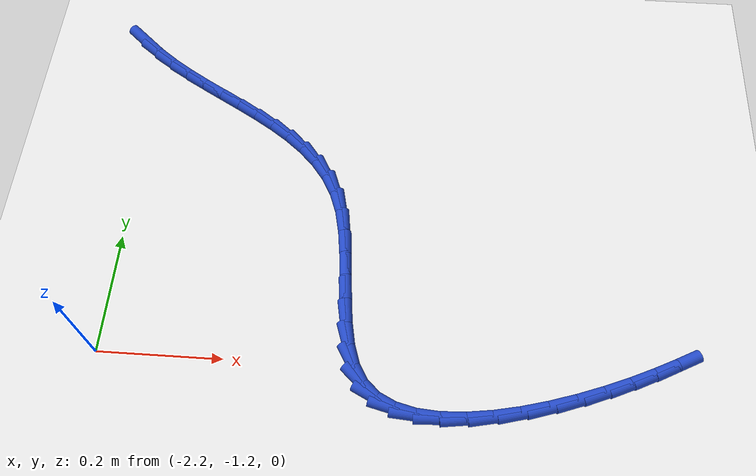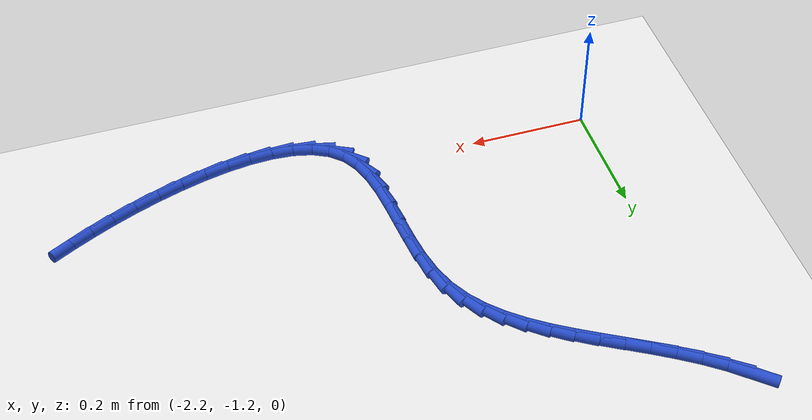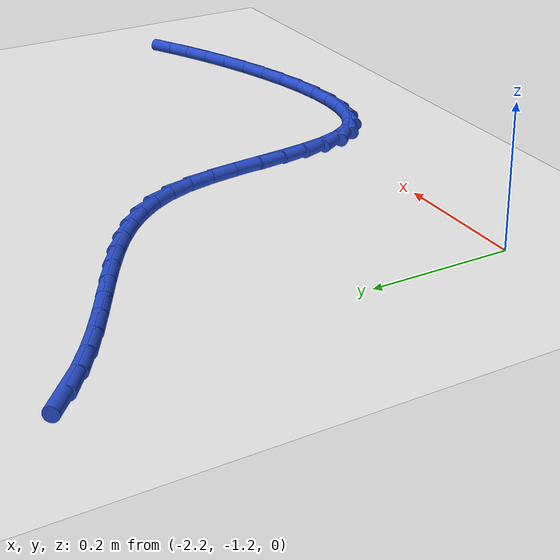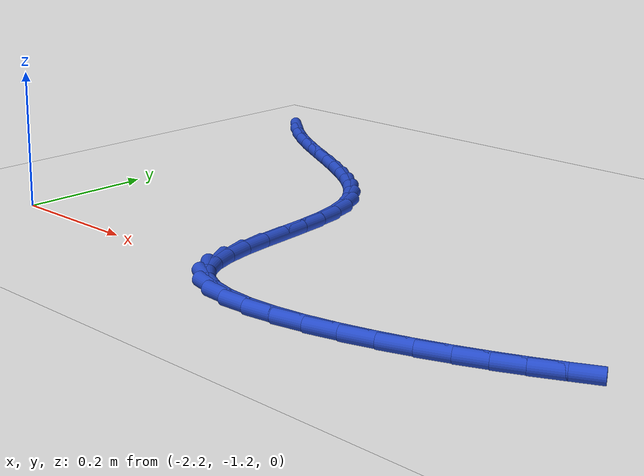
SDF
<sdf version="1.6">
 <world name="default">
  <model name="ground_plane">
   <static>1</static>
   <link name="link">
    <collision name="collision">
     <geometry><plane><normal>0 0 1</normal><size>100 100</size></plane></geometry>
     <surface><friction><ode><mu>100</mu><mu2>50</mu2></ode></friction></surface>
    </collision>
    <visual name="visual">
     <cast_shadows>0</cast_shadows>
     <geometry><plane><normal>0 0 1</normal><size>100 100</size></plane></geometry>
     <material>
      <script><uri>file://media/materials/scripts/gazebo.material</uri><name>Gazebo/WhiteGlow</name></script>
     </material>
    </visual>
   </link>
  </model>
  <model name="line">
   <link name="link_123">
    <pose>-2.2374804216673176 -0.5950723092660201 0.01 0 1.57 -0.7232789418383359</pose>
    <collision name="collision">
     <geometry><cylinder><radius>0.01</radius><length>0.08</length></cylinder></geometry>
    </collision>
    <visual name="visual">
     <material>
      <script><name>Gazebo/Blue</name><uri>file://media/materials/scripts/gazebo.material</uri></script>
     </material>
     <geometry><cylinder><radius>0.01</radius><length>0.08</length></cylinder></geometry>
    </visual>
   </link>
   <link name="link_124">
    <pose>-2.2078051824735447 -0.6212721599480319 0.01 0 1.57 -0.6467589380979553</pose>
    <collision name="collision">
     <geometry><cylinder><radius>0.01</radius><length>0.08</length></cylinder></geometry>
    </collision>
    <visual name="visual">
     <material>
      <script><name>Gazebo/Blue</name><uri>file://media/materials/scripts/gazebo.material</uri></script>
     </material>
     <geometry><cylinder><radius>0.01</radius><length>0.08</length></cylinder></geometry>
    </visual>
   </link>
   <link name="link_125">
    <pose>-2.176123737401924 -0.645194909239126 0.01 0 1.57 -0.5886669668450192</pose>
    <collision name="collision">
     <geometry><cylinder><radius>0.01</radius><length>0.08</length></cylinder></geometry>
    </collision>
    <visual name="visual">
     <material>
      <script><name>Gazebo/Blue</name><uri>file://media/materials/scripts/gazebo.material</uri></script>
     </material>
     <geometry><cylinder><radius>0.01</radius><length>0.08</length></cylinder></geometry>
    </visual>
   </link>
   <link name="link_126">
    <pose>-2.1429856106005416 -0.6673188084043228 0.01 0 1.57 -0.5488715623469345</pose>
    <collision name="collision">
     <geometry><cylinder><radius>0.01</radius><length>0.08</length></cylinder></geometry>
    </collision>
    <visual name="visual">
     <material>
      <script><name>Gazebo/Blue</name><uri>file://media/materials/scripts/gazebo.material</uri></script>
     </material>
     <geometry><cylinder><radius>0.01</radius><length>0.08</length></cylinder></geometry>
    </visual>
   </link>
   <link name="link_127">
    <pose>-2.1089422201651904 -0.6881381687967424 0.01 0 1.57 -0.5268605944632768</pose>
    <collision name="collision">
     <geometry><cylinder><radius>0.01</radius><length>0.08</length></cylinder></geometry>
    </collision>
    <visual name="visual">
     <material>
      <script><name>Gazebo/Blue</name><uri>file://media/materials/scripts/gazebo.material</uri></script>
     </material>
     <geometry><cylinder><radius>0.01</radius><length>0.08</length></cylinder></geometry>
    </visual>
   </link>
   <link name="link_128">
    <pose>-2.074544984191663 -0.7081473017695039 0.01 0 1.57 -0.5224583659723113</pose>
    <collision name="collision">
     <geometry><cylinder><radius>0.01</radius><length>0.08</length></cylinder></geometry>
    </collision>
    <visual name="visual">
     <material>
      <script><name>Gazebo/Blue</name><uri>file://media/materials/scripts/gazebo.material</uri></script>
     </material>
     <geometry><cylinder><radius>0.01</radius><length>0.08</length></cylinder></geometry>
    </visual>
   </link>
   <link name="link_129">
    <pose>-2.040345320775753 -0.7278405186757271 0.01 0 1.57 -0.5360383178829138</pose>
    <collision name="collision">
     <geometry><cylinder><radius>0.01</radius><length>0.08</length></cylinder></geometry>
    </collision>
    <visual name="visual">
     <material>
      <script><name>Gazebo/Blue</name><uri>file://media/materials/scripts/gazebo.material</uri></script>
     </material>
     <geometry><cylinder><radius>0.01</radius><length>0.08</length></cylinder></geometry>
    </visual>
   </link>
   <link name="link_130">
    <pose>-2.006894648013254 -0.7477121308685316 0.01 0 1.57 -0.5686100764123153</pose>
    <collision name="collision">
     <geometry><cylinder><radius>0.01</radius><length>0.08</length></cylinder></geometry>
    </collision>
    <visual name="visual">
     <material>
      <script><name>Gazebo/Blue</name><uri>file://media/materials/scripts/gazebo.material</uri></script>
     </material>
     <geometry><cylinder><radius>0.01</radius><length>0.08</length></cylinder></geometry>
    </visual>
   </link>
   <link name="link_131">
    <pose>-1.974744383999959 -0.7682564497010367 0.01 0 1.57 -0.6217688311466874</pose>
    <collision name="collision">
     <geometry><cylinder><radius>0.01</radius><length>0.08</length></cylinder></geometry>
    </collision>
    <visual name="visual">
     <material>
      <script><name>Gazebo/Blue</name><uri>file://media/materials/scripts/gazebo.material</uri></script>
     </material>
     <geometry><cylinder><radius>0.01</radius><length>0.08</length></cylinder></geometry>
    </visual>
   </link>
   <link name="link_132">
    <pose>-1.9444459468316606 -0.7899677865263623 0.01 0 1.57 -0.6974122447712529</pose>
    <collision name="collision">
     <geometry><cylinder><radius>0.01</radius><length>0.08</length></cylinder></geometry>
    </collision>
    <visual name="visual">
     <material>
      <script><name>Gazebo/Blue</name><uri>file://media/materials/scripts/gazebo.material</uri></script>
     </material>
     <geometry><cylinder><radius>0.01</radius><length>0.08</length></cylinder></geometry>
    </visual>
   </link>
   <link name="link_133">
    <pose>-1.916550754604154 -0.8133404526976276 0.01 0 1.57 -0.7970439858999246</pose>
    <collision name="collision">
     <geometry><cylinder><radius>0.01</radius><length>0.08</length></cylinder></geometry>
    </collision>
    <visual name="visual">
     <material>
      <script><name>Gazebo/Blue</name><uri>file://media/materials/scripts/gazebo.material</uri></script>
     </material>
     <geometry><cylinder><radius>0.01</radius><length>0.08</length></cylinder></geometry>
    </visual>
   </link>
   <link name="link_134">
    <pose>-1.891610225413231 -0.8388687595679516 0.01 0 1.57 -0.9204992539950397</pose>
    <collision name="collision">
     <geometry><cylinder><radius>0.01</radius><length>0.08</length></cylinder></geometry>
    </collision>
    <visual name="visual">
     <material>
      <script><name>Gazebo/Blue</name><uri>file://media/materials/scripts/gazebo.material</uri></script>
     </material>
     <geometry><cylinder><radius>0.01</radius><length>0.08</length></cylinder></geometry>
    </visual>
   </link>
   <link name="link_135">
    <pose>-1.8701757773546859 -0.8670470184904545 0.01 0 1.57 -1.064294567607528</pose>
    <collision name="collision">
     <geometry><cylinder><radius>0.01</radius><length>0.08</length></cylinder></geometry>
    </collision>
    <visual name="visual">
     <material>
      <script><name>Gazebo/Blue</name><uri>file://media/materials/scripts/gazebo.material</uri></script>
     </material>
     <geometry><cylinder><radius>0.01</radius><length>0.08</length></cylinder></geometry>
    </visual>
   </link>
   <link name="link_136">
    <pose>-1.8527988285243118 -0.8983695408182559 0.01 0 1.57 -1.2197630470914496</pose>
    <collision name="collision">
     <geometry><cylinder><radius>0.01</radius><length>0.08</length></cylinder></geometry>
    </collision>
    <visual name="visual">
     <material>
      <script><name>Gazebo/Blue</name><uri>file://media/materials/scripts/gazebo.material</uri></script>
     </material>
     <geometry><cylinder><radius>0.01</radius><length>0.08</length></cylinder></geometry>
    </visual>
   </link>
   <link name="link_137">
    <pose>-1.8400048826251498 -0.9333065957038703 0.01 0 1.57 -1.351841860528526</pose>
    <collision name="collision">
     <geometry><cylinder><radius>0.01</radius><length>0.08</length></cylinder></geometry>
    </collision>
    <visual name="visual">
     <material>
      <script><name>Gazebo/Blue</name><uri>file://media/materials/scripts/gazebo.material</uri></script>
     </material>
     <geometry><cylinder><radius>0.01</radius><length>0.08</length></cylinder></geometry>
    </visual>
   </link>
   <link name="link_138">
    <pose>-1.831492404985062 -0.9715611635304262 0.01 0 1.57 -1.4350634928997226</pose>
    <collision name="collision">
     <geometry><cylinder><radius>0.01</radius><length>0.08</length></cylinder></geometry>
    </collision>
    <visual name="visual">
     <material>
      <script><name>Gazebo/Blue</name><uri>file://media/materials/scripts/gazebo.material</uri></script>
     </material>
     <geometry><cylinder><radius>0.01</radius><length>0.08</length></cylinder></geometry>
    </visual>
   </link>
   <link name="link_139">
    <pose>-1.8259795719042882 -1.011926756893071 0.01 0 1.57 -1.4776147983194763</pose>
    <collision name="collision">
     <geometry><cylinder><radius>0.01</radius><length>0.08</length></cylinder></geometry>
    </collision>
    <visual name="visual">
     <material>
      <script><name>Gazebo/Blue</name><uri>file://media/materials/scripts/gazebo.material</uri></script>
     </material>
     <geometry><cylinder><radius>0.01</radius><length>0.08</length></cylinder></geometry>
    </visual>
   </link>
   <link name="link_140">
    <pose>-1.8221277172293202 -1.0531441525312868 0.01 0 1.57 -1.4845237583512385</pose>
    <collision name="collision">
     <geometry><cylinder><radius>0.01</radius><length>0.08</length></cylinder></geometry>
    </collision>
    <visual name="visual">
     <material>
      <script><name>Gazebo/Blue</name><uri>file://media/materials/scripts/gazebo.material</uri></script>
     </material>
     <geometry><cylinder><radius>0.01</radius><length>0.08</length></cylinder></geometry>
    </visual>
   </link>
   <link name="link_141">
    <pose>-1.8185981748066482 -1.0939541271845536 0.01 0 1.57 -1.4551796210338783</pose>
    <collision name="collision">
     <geometry><cylinder><radius>0.01</radius><length>0.08</length></cylinder></geometry>
    </collision>
    <visual name="visual">
     <material>
      <script><name>Gazebo/Blue</name><uri>file://media/materials/scripts/gazebo.material</uri></script>
     </material>
     <geometry><cylinder><radius>0.01</radius><length>0.08</length></cylinder></geometry>
    </visual>
   </link>
   <link name="link_142">
    <pose>-1.814052278482764 -1.1330974575923527 0.01 0 1.57 -1.3825121544015846</pose>
    <collision name="collision">
     <geometry><cylinder><radius>0.01</radius><length>0.08</length></cylinder></geometry>
    </collision>
    <visual name="visual">
     <material>
      <script><name>Gazebo/Blue</name><uri>file://media/materials/scripts/gazebo.material</uri></script>
     </material>
     <geometry><cylinder><radius>0.01</radius><length>0.08</length></cylinder></geometry>
    </visual>
   </link>
   <link name="link_143">
    <pose>-1.8071513621041588 -1.169314920494165 0.01 0 1.57 -1.251375512020371</pose>
    <collision name="collision">
     <geometry><cylinder><radius>0.01</radius><length>0.08</length></cylinder></geometry>
    </collision>
    <visual name="visual">
     <material>
      <script><name>Gazebo/Blue</name><uri>file://media/materials/scripts/gazebo.material</uri></script>
     </material>
     <geometry><cylinder><radius>0.01</radius><length>0.08</length></cylinder></geometry>
    </visual>
   </link>
   <link name="link_144">
    <pose>-1.7965567595173233 -1.2013472926294708 0.01 0 1.57 -1.0394378015041355</pose>
    <collision name="collision">
     <geometry><cylinder><radius>0.01</radius><length>0.08</length></cylinder></geometry>
    </collision>
    <visual name="visual">
     <material>
      <script><name>Gazebo/Blue</name><uri>file://media/materials/scripts/gazebo.material</uri></script>
     </material>
     <geometry><cylinder><radius>0.01</radius><length>0.08</length></cylinder></geometry>
    </visual>
   </link>
   <link name="link_145">
    <pose>-1.7809298045687492 -1.2279353507377522 0.01 0 1.57 -0.7452974691094025</pose>
    <collision name="collision">
     <geometry><cylinder><radius>0.01</radius><length>0.08</length></cylinder></geometry>
    </collision>
    <visual name="visual">
     <material>
      <script><name>Gazebo/Blue</name><uri>file://media/materials/scripts/gazebo.material</uri></script>
     </material>
     <geometry><cylinder><radius>0.01</radius><length>0.08</length></cylinder></geometry>
    </visual>
   </link>
   <link name="link_146">
    <pose>-1.7591684425717669 -1.248017845039149 0.01 0 1.57 -0.4624796510181699</pose>
    <collision name="collision">
     <geometry><cylinder><radius>0.01</radius><length>0.08</length></cylinder></geometry>
    </collision>
    <visual name="visual">
     <material>
      <script><name>Gazebo/Blue</name><uri>file://media/materials/scripts/gazebo.material</uri></script>
     </material>
     <geometry><cylinder><radius>0.01</radius><length>0.08</length></cylinder></geometry>
    </visual>
   </link>
   <link name="link_147">
    <pose>-1.731624226530696 -1.2617497634025745 0.01 0 1.57 -0.24183916097976363</pose>
    <collision name="collision">
     <geometry><cylinder><radius>0.01</radius><length>0.08</length></cylinder></geometry>
    </collision>
    <visual name="visual">
     <material>
      <script><name>Gazebo/Blue</name><uri>file://media/materials/scripts/gazebo.material</uri></script>
     </material>
     <geometry><cylinder><radius>0.01</radius><length>0.08</length></cylinder></geometry>
    </visual>
   </link>
   <link name="link_148">
    <pose>-1.699200356551786 -1.2697476583807004 0.01 0 1.57 -0.078993700419911</pose>
    <collision name="collision">
     <geometry><cylinder><radius>0.01</radius><length>0.08</length></cylinder></geometry>
    </collision>
    <visual name="visual">
     <material>
      <script><name>Gazebo/Blue</name><uri>file://media/materials/scripts/gazebo.material</uri></script>
     </material>
     <geometry><cylinder><radius>0.01</radius><length>0.08</length></cylinder></geometry>
    </visual>
   </link>
   <link name="link_149">
    <pose>-1.662801089586428 -1.2726289667915054 0.01 0 1.57 0.040965785308379486</pose>
    <collision name="collision">
     <geometry><cylinder><radius>0.01</radius><length>0.08</length></cylinder></geometry>
    </collision>
    <visual name="visual">
     <material>
      <script><name>Gazebo/Blue</name><uri>file://media/materials/scripts/gazebo.material</uri></script>
     </material>
     <geometry><cylinder><radius>0.01</radius><length>0.08</length></cylinder></geometry>
    </visual>
   </link>
   <link name="link_150">
    <pose>-1.6233306825860159 -1.2710111254529692 0.01 0 1.57 0.13132227365946356</pose>
    <collision name="collision">
     <geometry><cylinder><radius>0.01</radius><length>0.08</length></cylinder></geometry>
    </collision>
    <visual name="visual">
     <material>
      <script><name>Gazebo/Blue</name><uri>file://media/materials/scripts/gazebo.material</uri></script>
     </material>
     <geometry><cylinder><radius>0.01</radius><length>0.08</length></cylinder></geometry>
    </visual>
   </link>
   <link name="link_151">
    <pose>-1.5816933925019399 -1.2655115711830711 0.01 0 1.57 0.20151280637859742</pose>
    <collision name="collision">
     <geometry><cylinder><radius>0.01</radius><length>0.08</length></cylinder></geometry>
    </collision>
    <visual name="visual">
     <material>
      <script><name>Gazebo/Blue</name><uri>file://media/materials/scripts/gazebo.material</uri></script>
     </material>
     <geometry><cylinder><radius>0.01</radius><length>0.08</length></cylinder></geometry>
    </visual>
   </link>
   <link name="link_152">
    <pose>-1.5387934762855946 -1.2567477407997905 0.01 0 1.57 0.2579054210814382</pose>
    <collision name="collision">
     <geometry><cylinder><radius>0.01</radius><length>0.08</length></cylinder></geometry>
    </collision>
    <visual name="visual">
     <material>
      <script><name>Gazebo/Blue</name><uri>file://media/materials/scripts/gazebo.material</uri></script>
     </material>
     <geometry><cylinder><radius>0.01</radius><length>0.08</length></cylinder></geometry>
    </visual>
   </link>
   <link name="link_153">
    <pose>-1.4955351908883716 -1.2453370711211063 0.01 0 1.57 0.3048555144798522</pose>
    <collision name="collision">
     <geometry><cylinder><radius>0.01</radius><length>0.08</length></cylinder></geometry>
    </collision>
    <visual name="visual">
     <material>
      <script><name>Gazebo/Blue</name><uri>file://media/materials/scripts/gazebo.material</uri></script>
     </material>
     <geometry><cylinder><radius>0.01</radius><length>0.08</length></cylinder></geometry>
    </visual>
   </link>
   <link name="link_154">
    <pose>-1.4528227932616626 -1.2318969989649982 0.01 0 1.57 0.345504662714773</pose>
    <collision name="collision">
     <geometry><cylinder><radius>0.01</radius><length>0.08</length></cylinder></geometry>
    </collision>
    <visual name="visual">
     <material>
      <script><name>Gazebo/Blue</name><uri>file://media/materials/scripts/gazebo.material</uri></script>
     </material>
     <geometry><cylinder><radius>0.01</radius><length>0.08</length></cylinder></geometry>
    </visual>
   </link>
   <link name="link_155">
    <pose>-1.4115605403568605 -1.2170449611494452 0.01 0 1.57 0.3823416832771571</pose>
    <collision name="collision">
     <geometry><cylinder><radius>0.01</radius><length>0.08</length></cylinder></geometry>
    </collision>
    <visual name="visual">
     <material>
      <script><name>Gazebo/Blue</name><uri>file://media/materials/scripts/gazebo.material</uri></script>
     </material>
     <geometry><cylinder><radius>0.01</radius><length>0.08</length></cylinder></geometry>
    </visual>
   </link>
   <link name="link_156">
    <pose>-1.372628117305959 -1.2013890455605598 0.01 0 1.57 0.4166711969474405</pose>
    <collision name="collision">
     <geometry><cylinder><radius>0.01</radius><length>0.08</length></cylinder></geometry>
    </collision>
    <visual name="visual">
     <material>
      <script><name>Gazebo/Blue</name><uri>file://media/materials/scripts/gazebo.material</uri></script>
     </material>
     <geometry><cylinder><radius>0.01</radius><length>0.08</length></cylinder></geometry>
    </visual>
   </link>
   <link name="link_157">
    <pose>-1.3362410295847553 -1.185284637170914 0.01 0 1.57 0.4471608865625011</pose>
    <collision name="collision">
     <geometry><cylinder><radius>0.01</radius><length>0.08</length></cylinder></geometry>
    </collision>
    <visual name="visual">
     <material>
      <script><name>Gazebo/Blue</name><uri>file://media/materials/scripts/gazebo.material</uri></script>
     </material>
     <geometry><cylinder><radius>0.01</radius><length>0.08</length></cylinder></geometry>
    </visual>
   </link>
   <link name="link_158">
    <pose>-1.3018904316331021 -1.1688115244100346 0.01 0 1.57 0.4720399799230524</pose>
    <collision name="collision">
     <geometry><cylinder><radius>0.01</radius><length>0.08</length></cylinder></geometry>
    </collision>
    <visual name="visual">
     <material>
      <script><name>Gazebo/Blue</name><uri>file://media/materials/scripts/gazebo.material</uri></script>
     </material>
     <geometry><cylinder><radius>0.01</radius><length>0.08</length></cylinder></geometry>
    </visual>
   </link>
  </model>
 </world>
</sdf>
